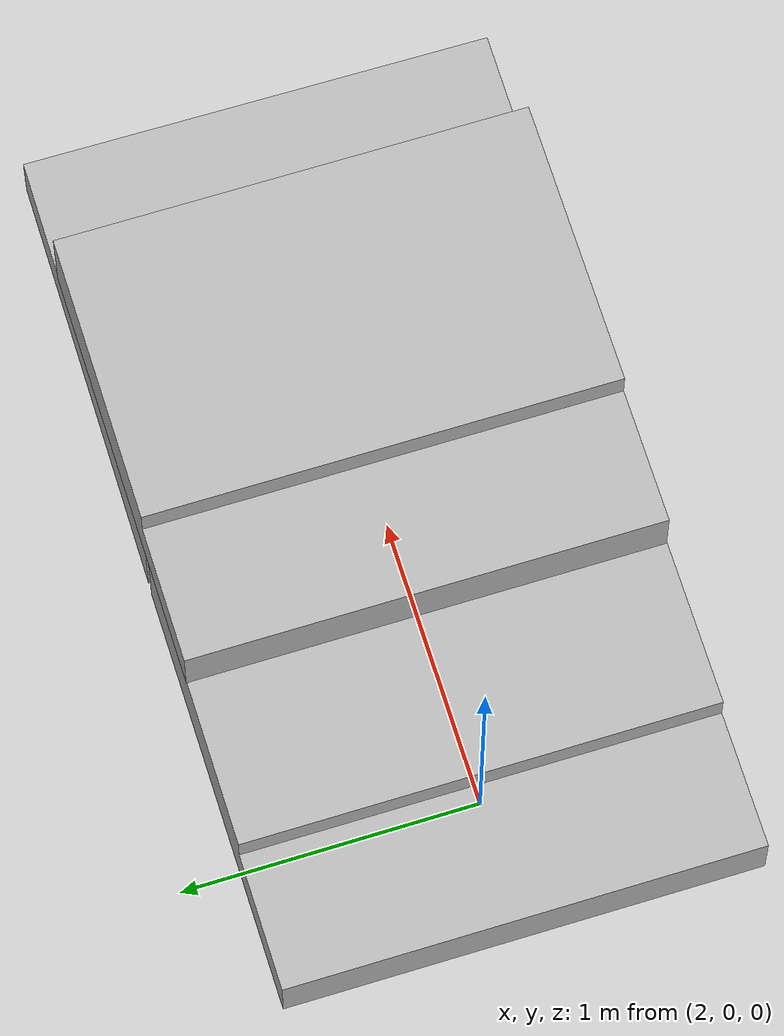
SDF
<sdf version="1.7">
 <world name="default">
  <physics type="ode">
   <max_step_size>0.001</max_step_size>
   <real_time_update_rate>1000</real_time_update_rate>
   <real_time_factor>1</real_time_factor>
  </physics>
  <model name="ground_plane">
   <static>1</static>
   <link name="link">
    <collision name="collision">
     <geometry><plane><normal>0 0 1</normal><size>100 100</size></plane></geometry>
     <surface>
      <contact><collide_bitmask>65535</collide_bitmask></contact>
      <friction><ode><mu>100</mu><mu2>50</mu2></ode></friction>
     </surface>
    </collision>
    <visual name="visual">
     <cast_shadows>0</cast_shadows>
     <geometry><plane><normal>0 0 1</normal><size>100 100</size></plane></geometry>
     <material>
      <script><uri>file://media/materials/scripts/gazebo.material</uri><name>Gazebo/Grey</name></script>
     </material>
    </visual>
   </link>
  </model>
  <light name="sun" type="directional">
   <pose>0 0 10 0 -0 0</pose>
   <diffuse>0.8 0.8 0.8 1</diffuse>
   <specular>0.2 0.2 0.2 1</specular>
   <attenuation>
    <range>1000</range>
    <constant>0.9</constant>
    <linear>0.01</linear>
    <quadratic>0.001</quadratic>
   </attenuation>
   <direction>-0.5 0.1 -0.9</direction>
   <spot><inner_angle>0</inner_angle><outer_angle>0</outer_angle><falloff>0</falloff></spot>
  </light>
  <model name="step">
   <static>1</static>
   <static>1</static>
   <link name="step_link">
    <pose>2 0.8 0 0 -0 3.14</pose>
    <visual name="visual">
     <geometry>
      <mesh><uri>model://rm_gazebo/worlds/place/step.stl</uri><scale>0.001 0.001 0.001</scale></mesh>
     </geometry>
    </visual>
    <collision name="collision">
     <geometry>
      <mesh><uri>model://rm_gazebo/worlds/place/step.stl</uri><scale>0.001 0.001 0.001</scale></mesh>
     </geometry>
    </collision>
    <velocity_decay><linear>0</linear><angular>0</angular></velocity_decay>
   </link>
   <static>1</static>
  </model>
  <gravity>0 0 -9.8</gravity>
  <magnetic_field>6e-06 2.3e-05 -4.2e-05</magnetic_field>
  <atmosphere type="adiabatic"/>
  <scene><ambient>0.4 0.4 0.4 1</ambient><background>0.7 0.7 0.7 1</background><shadows>1</shadows></scene>
  <spherical_coordinates>
   <surface_model>EARTH_WGS84</surface_model>
   <latitude_deg>0</latitude_deg>
   <longitude_deg>0</longitude_deg>
   <elevation>0</elevation>
   <heading_deg>0</heading_deg>
  </spherical_coordinates>
  <model name="step_clone">
   <static>1</static>
   <static>1</static>
   <link name="step_link">
    <pose>2 0.8 0 0 -0 3.14</pose>
    <visual name="visual">
     <geometry>
      <mesh><uri>model://rm_gazebo/worlds/place/step.stl</uri><scale>0.001 0.001 0.001</scale></mesh>
     </geometry>
    </visual>
    <collision name="collision">
     <geometry>
      <mesh><uri>model://rm_gazebo/worlds/place/step.stl</uri><scale>0.001 0.001 0.001</scale></mesh>
     </geometry>
    </collision>
    <velocity_decay><linear>0</linear><angular>0</angular></velocity_decay>
   </link>
   <static>1</static>
   <pose>6.03223 -0.024041 0 0 -0 3.13521</pose>
  </model>
  <model name="step_clone_0">
   <static>1</static>
   <static>1</static>
   <link name="step_link">
    <pose>2 0.8 0 0 -0 3.14</pose>
    <visual name="visual">
     <geometry>
      <mesh><uri>model://rm_gazebo/worlds/place/step.stl</uri><scale>0.001 0.001 0.001</scale></mesh>
     </geometry>
    </visual>
    <collision name="collision">
     <geometry>
      <mesh><uri>model://rm_gazebo/worlds/place/step.stl</uri><scale>0.001 0.001 0.001</scale></mesh>
     </geometry>
    </collision>
    <velocity_decay><linear>0</linear><angular>0</angular></velocity_decay>
   </link>
   <static>1</static>
   <pose>1.03078 0.000587 0.300149 0 -0 0</pose>
  </model>
 </world>
</sdf>
